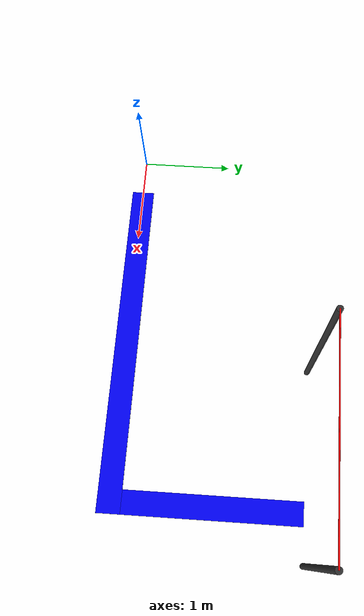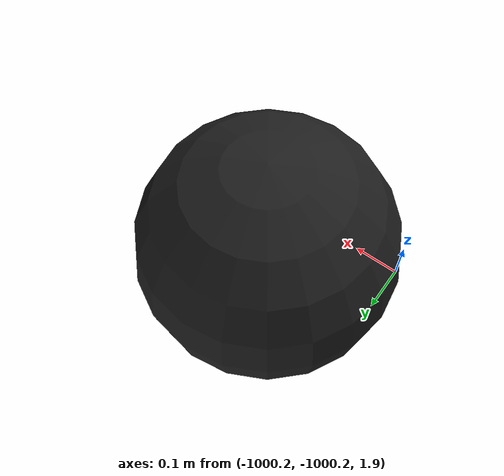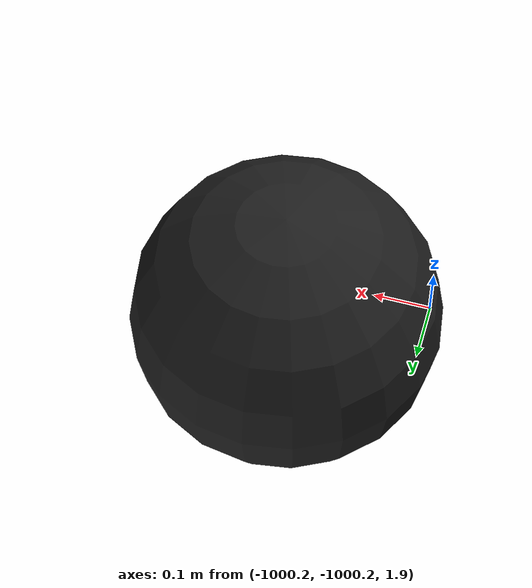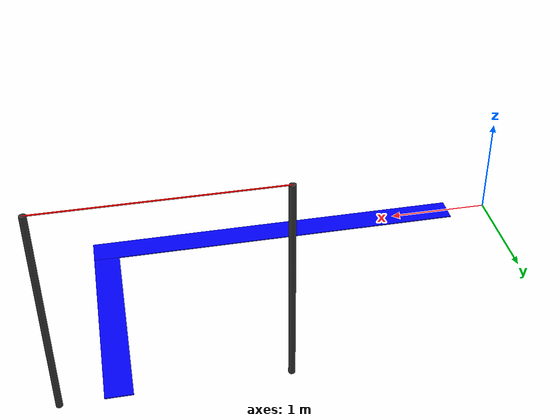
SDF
<sdf version="1.10">
 <world name="sae2">
  <physics type="ode">
   <max_step_size>0.004</max_step_size>
   <real_time_factor>1.0</real_time_factor>
   <real_time_update_rate>250</real_time_update_rate>
  </physics>
  <plugin name="gz::sim::systems::Physics" filename="gz-sim-physics-system"/>
  <plugin name="gz::sim::systems::UserCommands" filename="gz-sim-user-commands-system"/>
  <plugin name="gz::sim::systems::SceneBroadcaster" filename="gz-sim-scene-broadcaster-system"/>
  <plugin name="gz::sim::systems::Contact" filename="gz-sim-contact-system"/>
  <plugin name="gz::sim::systems::Imu" filename="gz-sim-imu-system"/>
  <plugin name="gz::sim::systems::AirPressure" filename="gz-sim-air-pressure-system"/>
  <plugin name="gz::sim::systems::ApplyLinkWrench" filename="gz-sim-apply-link-wrench-system"/>
  <plugin name="gz::sim::systems::NavSat" filename="gz-sim-navsat-system"/>
  <plugin name="gz::sim::systems::Sensors" filename="gz-sim-sensors-system">
   <render_engine>ogre2</render_engine>
  </plugin>
  <gravity>0 0 -9.8</gravity>
  <magnetic_field>6e-06 2.3e-05 -4.2e-05</magnetic_field>
  <atmosphere type="adiabatic"/>
  <spherical_coordinates>
   <surface_model>EARTH_WGS84</surface_model>
   <world_frame_orientation>ENU</world_frame_orientation>
   <latitude_deg>-23.203008</latitude_deg>
   <longitude_deg>-45.874897</longitude_deg>
   <elevation>0</elevation>
  </spherical_coordinates>
  <scene><ambient>0.4 0.4 0.4 1</ambient><background>0.7 0.7 0.7 1</background><shadows>true</shadows></scene>
  <light type="directional" name="sun">
   <pose>0 0 20 0 0 0</pose>
   <ambient>0.8 0.8 0.8 1</ambient>
   <diffuse>1.0 1.0 1.0 1</diffuse>
   <specular>0.2 0.2 0.2 1</specular>
   <attenuation>
    <range>1000</range>
    <constant>0.9</constant>
    <linear>0.01</linear>
    <quadratic>0.001</quadratic>
   </attenuation>
   <direction>-0.5 0.1 -0.9</direction>
  </light>
  <model name="the_void">
   <static>1</static>
   <link name="link">
    <pose>0 0 0.1 0 -0 0</pose>
    <visual name="the_void">
     <pose>0 0 2 0 -0 0</pose>
     <geometry><sphere><radius>0.25</radius></sphere></geometry>
     <material>
      <script><uri>file://media/materials/scripts/Gazebo.material</uri><name>Gazebo/Black</name></script>
     </material>
    </visual>
   </link>
   <pose>-1000 -1000 0 0 0 0</pose>
  </model>
  <model name="mangueira_com_suportes">
   <static>true</static>
   <pose>3.5 2.0 0 0 0 0</pose>
   <link name="mangueira">
    <pose>0 0 2 0 1.5708 0</pose>
    <collision name="collision">
     <geometry><cylinder><radius>0.00635</radius><length>2</length></cylinder></geometry>
    </collision>
    <visual name="visual">
     <geometry><cylinder><radius>0.00635</radius><length>2</length></cylinder></geometry>
     <material><ambient>0.8 0 0 1</ambient><diffuse>1 0 0 1</diffuse></material>
    </visual>
   </link>
   <link name="poste_esquerdo">
    <pose>-1 0 1 0 0 0</pose>
    <collision name="collision">
     <geometry><cylinder><radius>0.03</radius><length>2</length></cylinder></geometry>
    </collision>
    <visual name="visual">
     <geometry><cylinder><radius>0.03</radius><length>2</length></cylinder></geometry>
     <material><ambient>0.2 0.2 0.2 1</ambient><diffuse>0.2 0.2 0.2 1</diffuse></material>
    </visual>
   </link>
   <link name="poste_direito">
    <pose>1 0 1 0 0 0</pose>
    <collision name="collision">
     <geometry><cylinder><radius>0.03</radius><length>2</length></cylinder></geometry>
    </collision>
    <visual name="visual">
     <geometry><cylinder><radius>0.03</radius><length>2</length></cylinder></geometry>
     <material><ambient>0.2 0.2 0.2 1</ambient><diffuse>0.2 0.2 0.2 1</diffuse></material>
    </visual>
   </link>
  </model>
  <model name="faixa_1">
   <static>true</static>
   <pose>2.2625 0 0 0 0 0</pose>
   <link name="link">
    <visual name="visual">
     <geometry><box><size>3.725 0.25 0.01</size></box></geometry>
     <material><ambient>0 0 1 1</ambient><diffuse>0 0 1 1</diffuse></material>
    </visual>
   </link>
  </model>
  <model name="faixa_2">
   <static>true</static>
   <pose>4 1 0 0 0 1.5707963</pose>
   <link name="link">
    <visual name="visual">
     <geometry><box><size>2 0.25 0.01</size></box></geometry>
     <material><ambient>0 0 1 1</ambient><diffuse>0 0 1 1</diffuse></material>
    </visual>
   </link>
  </model>
 </world>
</sdf>
